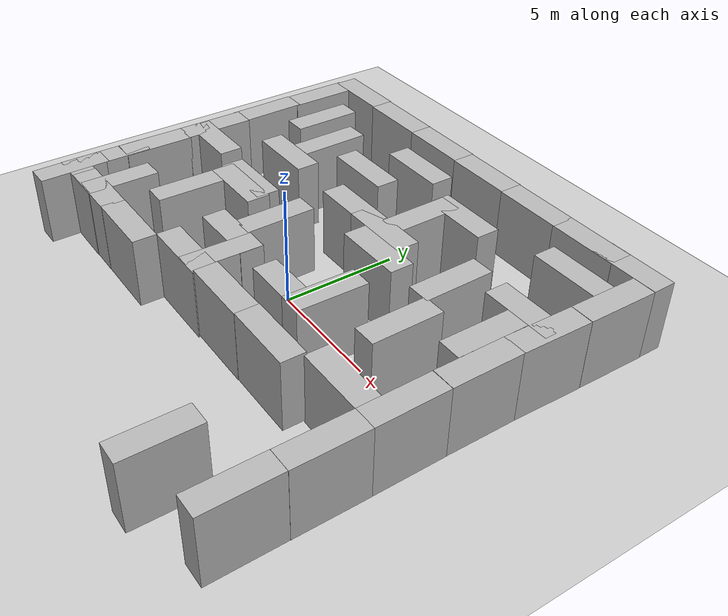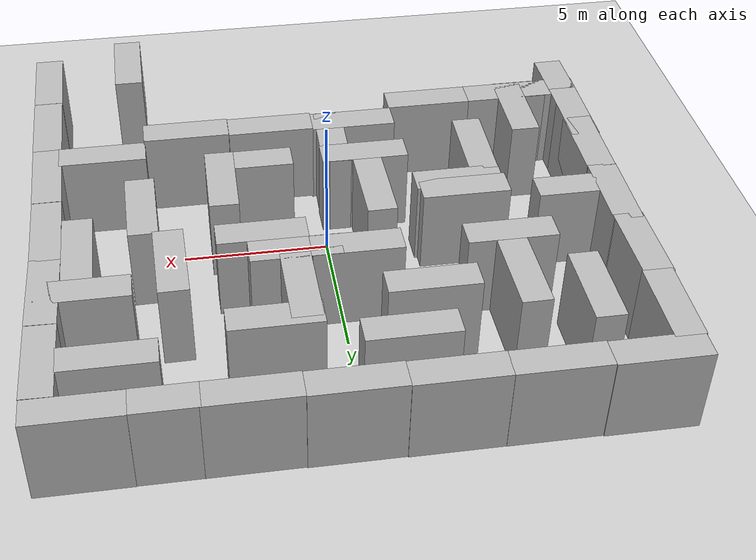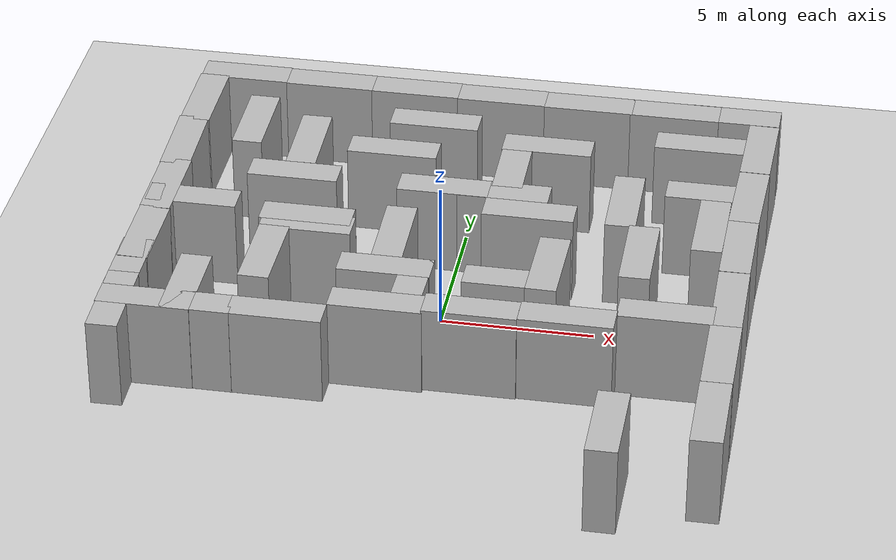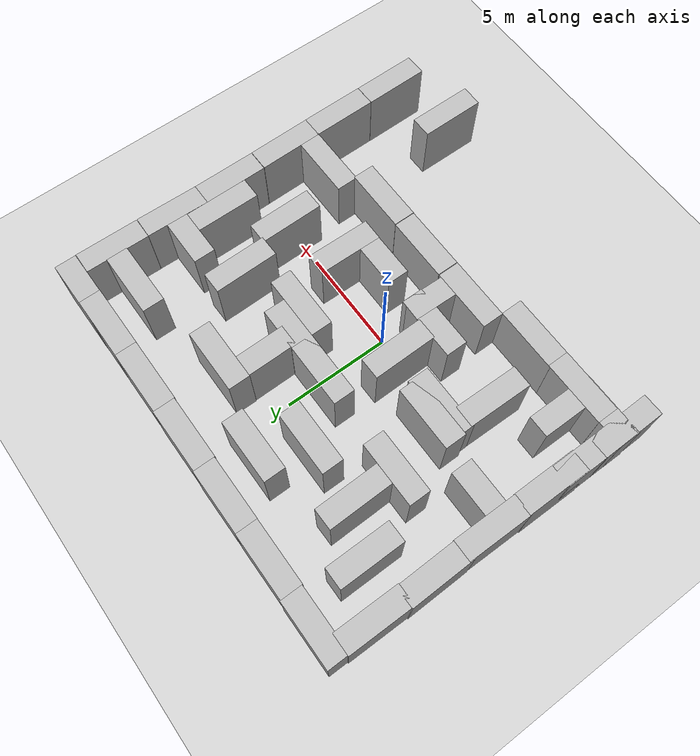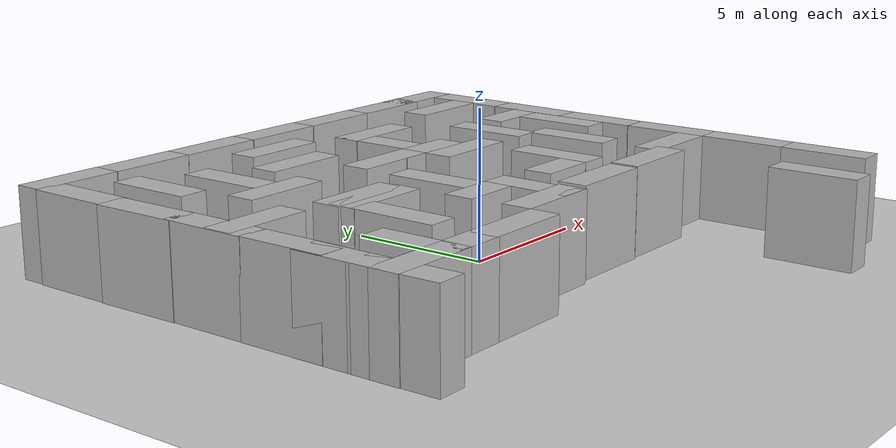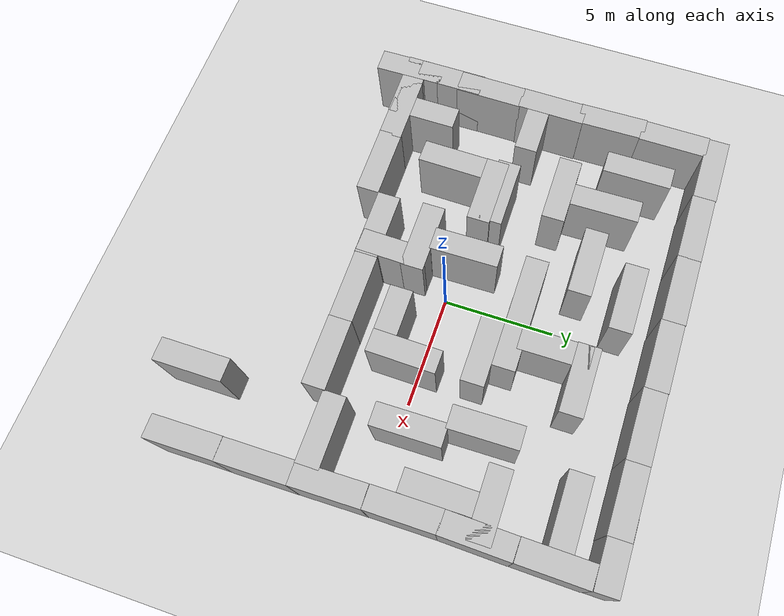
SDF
<sdf version="1.7">
 <world name="default">
  <light name="sun" type="directional">
   <pose>0 0 10 0 -0 0</pose>
   <diffuse>0.8 0.8 0.8 1</diffuse>
   <specular>0.2 0.2 0.2 1</specular>
   <attenuation>
    <range>1000</range>
    <constant>0.9</constant>
    <linear>0.01</linear>
    <quadratic>0.001</quadratic>
   </attenuation>
   <direction>-0.5 0.1 -0.9</direction>
   <spot><inner_angle>0</inner_angle><outer_angle>0</outer_angle><falloff>0</falloff></spot>
  </light>
  <model name="ground_plane">
   <static>1</static>
   <link name="link">
    <collision name="collision">
     <geometry><plane><normal>0 0 1</normal><size>100 100</size></plane></geometry>
     <surface><friction><ode><mu>100</mu><mu2>50</mu2></ode></friction></surface>
    </collision>
    <visual name="visual">
     <cast_shadows>0</cast_shadows>
     <geometry><plane><normal>0 0 1</normal><size>100 100</size></plane></geometry>
     <material>
      <script><uri>file://media/materials/scripts/gazebo.material</uri><name>Gazebo/Grey</name></script>
     </material>
    </visual>
   </link>
  </model>
  <gravity>0 0 -9.8</gravity>
  <magnetic_field>6e-06 2.3e-05 -4.2e-05</magnetic_field>
  <atmosphere type="adiabatic"/>
  <physics type="ode">
   <max_step_size>0.001</max_step_size>
   <real_time_factor>1</real_time_factor>
   <real_time_update_rate>1000</real_time_update_rate>
  </physics>
  <scene><ambient>0.4 0.4 0.4 1</ambient><background>0.7 0.7 0.7 1</background><shadows>1</shadows></scene>
  <spherical_coordinates>
   <surface_model>EARTH_WGS84</surface_model>
   <latitude_deg>0</latitude_deg>
   <longitude_deg>0</longitude_deg>
   <elevation>0</elevation>
   <heading_deg>0</heading_deg>
  </spherical_coordinates>
  <model name="brick_box_3x1x3">
   <static>1</static>
   <link name="chassis">
    <pose>0 0 1.5 0 -0 0</pose>
    <collision name="collision"><geometry><box><size>3 1 3</size></box></geometry></collision>
    <visual name="visual">
     <geometry><mesh><uri>model://brick_box_3x1x3/meshes/simple_box.dae</uri><scale>3 1 3</scale></mesh></geometry>
     <material>
      <script>
       <uri>model://brick_box_3x1x3/materials/scripts</uri>
       <uri>model://brick_box_3x1x3/materials/textures</uri>
       <name>BrickBox/Diffuse</name>
      </script>
     </material>
    </visual>
   </link>
   <pose>-8.46523 9.55339 0 0 -0 0</pose>
  </model>
  <model name="brick_box_3x1x3_0">
   <static>1</static>
   <link name="chassis">
    <pose>0 0 1.5 0 -0 0</pose>
    <collision name="collision"><geometry><box><size>3 1 3</size></box></geometry></collision>
    <visual name="visual">
     <geometry><mesh><uri>model://brick_box_3x1x3/meshes/simple_box.dae</uri><scale>3 1 3</scale></mesh></geometry>
     <material>
      <script>
       <uri>model://brick_box_3x1x3/materials/scripts</uri>
       <uri>model://brick_box_3x1x3/materials/textures</uri>
       <name>BrickBox/Diffuse</name>
      </script>
     </material>
    </visual>
   </link>
   <pose>-5.472 9.52057 0 0 -0 0</pose>
  </model>
  <model name="brick_box_3x1x3_1">
   <static>1</static>
   <link name="chassis">
    <pose>0 0 1.5 0 -0 0</pose>
    <collision name="collision"><geometry><box><size>3 1 3</size></box></geometry></collision>
    <visual name="visual">
     <geometry><mesh><uri>model://brick_box_3x1x3/meshes/simple_box.dae</uri><scale>3 1 3</scale></mesh></geometry>
     <material>
      <script>
       <uri>model://brick_box_3x1x3/materials/scripts</uri>
       <uri>model://brick_box_3x1x3/materials/textures</uri>
       <name>BrickBox/Diffuse</name>
      </script>
     </material>
    </visual>
   </link>
   <pose>-2.48829 9.51088 0 0 -0 0</pose>
  </model>
  <model name="brick_box_3x1x3_2">
   <static>1</static>
   <link name="chassis">
    <pose>0 0 1.5 0 -0 0</pose>
    <collision name="collision"><geometry><box><size>3 1 3</size></box></geometry></collision>
    <visual name="visual">
     <geometry><mesh><uri>model://brick_box_3x1x3/meshes/simple_box.dae</uri><scale>3 1 3</scale></mesh></geometry>
     <material>
      <script>
       <uri>model://brick_box_3x1x3/materials/scripts</uri>
       <uri>model://brick_box_3x1x3/materials/textures</uri>
       <name>BrickBox/Diffuse</name>
      </script>
     </material>
    </visual>
   </link>
   <pose>0.507665 9.48432 0 0 -0 0</pose>
  </model>
  <model name="brick_box_3x1x3_3">
   <static>1</static>
   <link name="chassis">
    <pose>0 0 1.5 0 -0 0</pose>
    <collision name="collision"><geometry><box><size>3 1 3</size></box></geometry></collision>
    <visual name="visual">
     <geometry><mesh><uri>model://brick_box_3x1x3/meshes/simple_box.dae</uri><scale>3 1 3</scale></mesh></geometry>
     <material>
      <script>
       <uri>model://brick_box_3x1x3/materials/scripts</uri>
       <uri>model://brick_box_3x1x3/materials/textures</uri>
       <name>BrickBox/Diffuse</name>
      </script>
     </material>
    </visual>
   </link>
   <pose>3.50209 9.45934 0 0 -0 0</pose>
  </model>
  <model name="brick_box_3x1x3_4">
   <static>1</static>
   <link name="chassis">
    <pose>0 0 1.5 0 -0 0</pose>
    <collision name="collision"><geometry><box><size>3 1 3</size></box></geometry></collision>
    <visual name="visual">
     <geometry><mesh><uri>model://brick_box_3x1x3/meshes/simple_box.dae</uri><scale>3 1 3</scale></mesh></geometry>
     <material>
      <script>
       <uri>model://brick_box_3x1x3/materials/scripts</uri>
       <uri>model://brick_box_3x1x3/materials/textures</uri>
       <name>BrickBox/Diffuse</name>
      </script>
     </material>
    </visual>
   </link>
   <pose>6.44256 9.45577 0 0 -0 0</pose>
  </model>
  <model name="brick_box_3x1x3_5">
   <static>1</static>
   <link name="chassis">
    <pose>0 0 1.5 0 -0 0</pose>
    <collision name="collision"><geometry><box><size>3 1 3</size></box></geometry></collision>
    <visual name="visual">
     <geometry><mesh><uri>model://brick_box_3x1x3/meshes/simple_box.dae</uri><scale>3 1 3</scale></mesh></geometry>
     <material>
      <script>
       <uri>model://brick_box_3x1x3/materials/scripts</uri>
       <uri>model://brick_box_3x1x3/materials/textures</uri>
       <name>BrickBox/Diffuse</name>
      </script>
     </material>
    </visual>
   </link>
   <pose>8.48988 9.46786 0 0 -0 0</pose>
  </model>
  <model name="brick_box_3x1x3_6">
   <static>1</static>
   <link name="chassis">
    <pose>0 0 1.5 0 -0 0</pose>
    <collision name="collision"><geometry><box><size>3 1 3</size></box></geometry></collision>
    <visual name="visual">
     <geometry><mesh><uri>model://brick_box_3x1x3/meshes/simple_box.dae</uri><scale>3 1 3</scale></mesh></geometry>
     <material>
      <script>
       <uri>model://brick_box_3x1x3/materials/scripts</uri>
       <uri>model://brick_box_3x1x3/materials/textures</uri>
       <name>BrickBox/Diffuse</name>
      </script>
     </material>
    </visual>
   </link>
   <pose>-7.28014 -4.47821 0 0 -0 0</pose>
  </model>
  <model name="brick_box_3x1x3_7">
   <static>1</static>
   <link name="chassis">
    <pose>0 0 1.5 0 -0 0</pose>
    <collision name="collision"><geometry><box><size>3 1 3</size></box></geometry></collision>
    <visual name="visual">
     <geometry><mesh><uri>model://brick_box_3x1x3/meshes/simple_box.dae</uri><scale>3 1 3</scale></mesh></geometry>
     <material>
      <script>
       <uri>model://brick_box_3x1x3/materials/scripts</uri>
       <uri>model://brick_box_3x1x3/materials/textures</uri>
       <name>BrickBox/Diffuse</name>
      </script>
     </material>
    </visual>
   </link>
   <pose>-4.45589 0.533248 0 0 -0 0</pose>
  </model>
  <model name="brick_box_3x1x3_8">
   <static>1</static>
   <link name="chassis">
    <pose>0 0 1.5 0 -0 0</pose>
    <collision name="collision"><geometry><box><size>3 1 3</size></box></geometry></collision>
    <visual name="visual">
     <geometry><mesh><uri>model://brick_box_3x1x3/meshes/simple_box.dae</uri><scale>3 1 3</scale></mesh></geometry>
     <material>
      <script>
       <uri>model://brick_box_3x1x3/materials/scripts</uri>
       <uri>model://brick_box_3x1x3/materials/textures</uri>
       <name>BrickBox/Diffuse</name>
      </script>
     </material>
    </visual>
   </link>
   <pose>-8.53665 -4.49715 0 0 -0 0</pose>
  </model>
  <model name="brick_box_3x1x3_9">
   <static>1</static>
   <link name="chassis">
    <pose>0 0 1.5 0 -0 0</pose>
    <collision name="collision"><geometry><box><size>3 1 3</size></box></geometry></collision>
    <visual name="visual">
     <geometry><mesh><uri>model://brick_box_3x1x3/meshes/simple_box.dae</uri><scale>3 1 3</scale></mesh></geometry>
     <material>
      <script>
       <uri>model://brick_box_3x1x3/materials/scripts</uri>
       <uri>model://brick_box_3x1x3/materials/textures</uri>
       <name>BrickBox/Diffuse</name>
      </script>
     </material>
    </visual>
   </link>
   <pose>-8.44293 1.49368 0 0 -0 0</pose>
  </model>
  <model name="brick_box_3x1x3_10">
   <static>1</static>
   <link name="chassis">
    <pose>0 0 1.5 0 -0 0</pose>
    <collision name="collision"><geometry><box><size>3 1 3</size></box></geometry></collision>
    <visual name="visual">
     <geometry><mesh><uri>model://brick_box_3x1x3/meshes/simple_box.dae</uri><scale>3 1 3</scale></mesh></geometry>
     <material>
      <script>
       <uri>model://brick_box_3x1x3/materials/scripts</uri>
       <uri>model://brick_box_3x1x3/materials/textures</uri>
       <name>BrickBox/Diffuse</name>
      </script>
     </material>
    </visual>
   </link>
   <pose>4.5764 -3.43191 0.120842 0 -0 0</pose>
  </model>
  <model name="brick_box_3x1x3_11">
   <static>1</static>
   <link name="chassis">
    <pose>0 0 1.5 0 -0 0</pose>
    <collision name="collision"><geometry><box><size>3 1 3</size></box></geometry></collision>
    <visual name="visual">
     <geometry><mesh><uri>model://brick_box_3x1x3/meshes/simple_box.dae</uri><scale>3 1 3</scale></mesh></geometry>
     <material>
      <script>
       <uri>model://brick_box_3x1x3/materials/scripts</uri>
       <uri>model://brick_box_3x1x3/materials/textures</uri>
       <name>BrickBox/Diffuse</name>
      </script>
     </material>
    </visual>
   </link>
   <pose>1.56808 -3.43253 0.085358 0 -0 0</pose>
  </model>
  <model name="brick_box_3x1x3_12">
   <static>1</static>
   <link name="chassis">
    <pose>0 0 1.5 0 -0 0</pose>
    <collision name="collision"><geometry><box><size>3 1 3</size></box></geometry></collision>
    <visual name="visual">
     <geometry><mesh><uri>model://brick_box_3x1x3/meshes/simple_box.dae</uri><scale>3 1 3</scale></mesh></geometry>
     <material>
      <script>
       <uri>model://brick_box_3x1x3/materials/scripts</uri>
       <uri>model://brick_box_3x1x3/materials/textures</uri>
       <name>BrickBox/Diffuse</name>
      </script>
     </material>
    </visual>
   </link>
   <pose>-4.56061 1.04068 0 0 -0 0</pose>
  </model>
  <model name="brick_box_3x1x3_13">
   <static>1</static>
   <link name="chassis">
    <pose>0 0 1.5 0 -0 0</pose>
    <collision name="collision"><geometry><box><size>3 1 3</size></box></geometry></collision>
    <visual name="visual">
     <geometry><mesh><uri>model://brick_box_3x1x3/meshes/simple_box.dae</uri><scale>3 1 3</scale></mesh></geometry>
     <material>
      <script>
       <uri>model://brick_box_3x1x3/materials/scripts</uri>
       <uri>model://brick_box_3x1x3/materials/textures</uri>
       <name>BrickBox/Diffuse</name>
      </script>
     </material>
    </visual>
   </link>
   <pose>7.54132 -2.54006 0 0 -0 0</pose>
  </model>
  <model name="brick_box_3x1x3_14">
   <static>1</static>
   <link name="chassis">
    <pose>0 0 1.5 0 -0 0</pose>
    <collision name="collision"><geometry><box><size>3 1 3</size></box></geometry></collision>
    <visual name="visual">
     <geometry><mesh><uri>model://brick_box_3x1x3/meshes/simple_box.dae</uri><scale>3 1 3</scale></mesh></geometry>
     <material>
      <script>
       <uri>model://brick_box_3x1x3/materials/scripts</uri>
       <uri>model://brick_box_3x1x3/materials/textures</uri>
       <name>BrickBox/Diffuse</name>
      </script>
     </material>
    </visual>
   </link>
   <pose>-1.40047 -3.47139 0 0 -0 0</pose>
  </model>
  <model name="brick_box_3x1x3_15">
   <static>1</static>
   <link name="chassis">
    <pose>0 0 1.5 0 -0 0</pose>
    <collision name="collision"><geometry><box><size>3 1 3</size></box></geometry></collision>
    <visual name="visual">
     <geometry><mesh><uri>model://brick_box_3x1x3/meshes/simple_box.dae</uri><scale>3 1 3</scale></mesh></geometry>
     <material>
      <script>
       <uri>model://brick_box_3x1x3/materials/scripts</uri>
       <uri>model://brick_box_3x1x3/materials/textures</uri>
       <name>BrickBox/Diffuse</name>
      </script>
     </material>
    </visual>
   </link>
   <pose>-5.50946 3.56604 0 0 -0 0</pose>
  </model>
  <model name="brick_box_3x1x3_16">
   <static>1</static>
   <link name="chassis">
    <pose>0 0 1.5 0 -0 0</pose>
    <collision name="collision"><geometry><box><size>3 1 3</size></box></geometry></collision>
    <visual name="visual">
     <geometry><mesh><uri>model://brick_box_3x1x3/meshes/simple_box.dae</uri><scale>3 1 3</scale></mesh></geometry>
     <material>
      <script>
       <uri>model://brick_box_3x1x3/materials/scripts</uri>
       <uri>model://brick_box_3x1x3/materials/textures</uri>
       <name>BrickBox/Diffuse</name>
      </script>
     </material>
    </visual>
   </link>
   <pose>-2.53896 5.53088 0 0 -0 0</pose>
  </model>
  <model name="brick_box_3x1x3_17">
   <static>1</static>
   <link name="chassis">
    <pose>0 0 1.5 0 -0 0</pose>
    <collision name="collision"><geometry><box><size>3 1 3</size></box></geometry></collision>
    <visual name="visual">
     <geometry><mesh><uri>model://brick_box_3x1x3/meshes/simple_box.dae</uri><scale>3 1 3</scale></mesh></geometry>
     <material>
      <script>
       <uri>model://brick_box_3x1x3/materials/scripts</uri>
       <uri>model://brick_box_3x1x3/materials/textures</uri>
       <name>BrickBox/Diffuse</name>
      </script>
     </material>
    </visual>
   </link>
   <pose>-1.57972 0.462757 -0 0 -0 1.58335</pose>
  </model>
  <model name="brick_box_3x1x3_18">
   <static>1</static>
   <link name="chassis">
    <pose>0 0 1.5 0 -0 0</pose>
    <collision name="collision"><geometry><box><size>3 1 3</size></box></geometry></collision>
    <visual name="visual">
     <geometry><mesh><uri>model://brick_box_3x1x3/meshes/simple_box.dae</uri><scale>3 1 3</scale></mesh></geometry>
     <material>
      <script>
       <uri>model://brick_box_3x1x3/materials/scripts</uri>
       <uri>model://brick_box_3x1x3/materials/textures</uri>
       <name>BrickBox/Diffuse</name>
      </script>
     </material>
    </visual>
   </link>
   <pose>5.4779 3.52288 0 0 -0 1.58625</pose>
  </model>
  <model name="brick_box_3x1x3_19">
   <static>1</static>
   <link name="chassis">
    <pose>0 0 1.5 0 -0 0</pose>
    <collision name="collision"><geometry><box><size>3 1 3</size></box></geometry></collision>
    <visual name="visual">
     <geometry><mesh><uri>model://brick_box_3x1x3/meshes/simple_box.dae</uri><scale>3 1 3</scale></mesh></geometry>
     <material>
      <script>
       <uri>model://brick_box_3x1x3/materials/scripts</uri>
       <uri>model://brick_box_3x1x3/materials/textures</uri>
       <name>BrickBox/Diffuse</name>
      </script>
     </material>
    </visual>
   </link>
   <pose>9.47279 -7.51807 -9e-06 9e-06 0.000951 -1.56124</pose>
  </model>
  <model name="brick_box_3x1x3_20">
   <static>1</static>
   <link name="chassis">
    <pose>0 0 1.5 0 -0 0</pose>
    <collision name="collision"><geometry><box><size>3 1 3</size></box></geometry></collision>
    <visual name="visual">
     <geometry><mesh><uri>model://brick_box_3x1x3/meshes/simple_box.dae</uri><scale>3 1 3</scale></mesh></geometry>
     <material>
      <script>
       <uri>model://brick_box_3x1x3/materials/scripts</uri>
       <uri>model://brick_box_3x1x3/materials/textures</uri>
       <name>BrickBox/Diffuse</name>
      </script>
     </material>
    </visual>
   </link>
   <pose>9.45439 -4.51841 0 0 -0 1.57734</pose>
  </model>
  <model name="brick_box_3x1x3_21">
   <static>1</static>
   <link name="chassis">
    <pose>0 0 1.5 0 -0 0</pose>
    <collision name="collision"><geometry><box><size>3 1 3</size></box></geometry></collision>
    <visual name="visual">
     <geometry><mesh><uri>model://brick_box_3x1x3/meshes/simple_box.dae</uri><scale>3 1 3</scale></mesh></geometry>
     <material>
      <script>
       <uri>model://brick_box_3x1x3/materials/scripts</uri>
       <uri>model://brick_box_3x1x3/materials/textures</uri>
       <name>BrickBox/Diffuse</name>
      </script>
     </material>
    </visual>
   </link>
   <pose>9.42032 -1.5245 0 0 -0 1.58366</pose>
  </model>
  <model name="brick_box_3x1x3_22">
   <static>1</static>
   <link name="chassis">
    <pose>0 0 1.5 0 -0 0</pose>
    <collision name="collision"><geometry><box><size>3 1 3</size></box></geometry></collision>
    <visual name="visual">
     <geometry><mesh><uri>model://brick_box_3x1x3/meshes/simple_box.dae</uri><scale>3 1 3</scale></mesh></geometry>
     <material>
      <script>
       <uri>model://brick_box_3x1x3/materials/scripts</uri>
       <uri>model://brick_box_3x1x3/materials/textures</uri>
       <name>BrickBox/Diffuse</name>
      </script>
     </material>
    </visual>
   </link>
   <pose>9.39389 1.48599 0 0 -0 1.5723</pose>
  </model>
  <model name="brick_box_3x1x3_23">
   <static>1</static>
   <link name="chassis">
    <pose>0 0 1.5 0 -0 0</pose>
    <collision name="collision"><geometry><box><size>3 1 3</size></box></geometry></collision>
    <visual name="visual">
     <geometry><mesh><uri>model://brick_box_3x1x3/meshes/simple_box.dae</uri><scale>3 1 3</scale></mesh></geometry>
     <material>
      <script>
       <uri>model://brick_box_3x1x3/materials/scripts</uri>
       <uri>model://brick_box_3x1x3/materials/textures</uri>
       <name>BrickBox/Diffuse</name>
      </script>
     </material>
    </visual>
   </link>
   <pose>9.42756 4.44847 0 0 -0 1.54705</pose>
  </model>
  <model name="brick_box_3x1x3_24">
   <static>1</static>
   <link name="chassis">
    <pose>0 0 1.5 0 -0 0</pose>
    <collision name="collision"><geometry><box><size>3 1 3</size></box></geometry></collision>
    <visual name="visual">
     <geometry><mesh><uri>model://brick_box_3x1x3/meshes/simple_box.dae</uri><scale>3 1 3</scale></mesh></geometry>
     <material>
      <script>
       <uri>model://brick_box_3x1x3/materials/scripts</uri>
       <uri>model://brick_box_3x1x3/materials/textures</uri>
       <name>BrickBox/Diffuse</name>
      </script>
     </material>
    </visual>
   </link>
   <pose>9.47912 7.45795 0 0 -0 1.55575</pose>
  </model>
  <model name="brick_box_3x1x3_25">
   <static>1</static>
   <link name="chassis">
    <pose>0 0 1.5 0 -0 0</pose>
    <collision name="collision"><geometry><box><size>3 1 3</size></box></geometry></collision>
    <visual name="visual">
     <geometry><mesh><uri>model://brick_box_3x1x3/meshes/simple_box.dae</uri><scale>3 1 3</scale></mesh></geometry>
     <material>
      <script>
       <uri>model://brick_box_3x1x3/materials/scripts</uri>
       <uri>model://brick_box_3x1x3/materials/textures</uri>
       <name>BrickBox/Diffuse</name>
      </script>
     </material>
    </visual>
   </link>
   <pose>-7.50483 -3.43801 0 0 -0 1.56732</pose>
  </model>
  <model name="brick_box_3x1x3_26">
   <static>1</static>
   <link name="chassis">
    <pose>0 0 1.5 0 -0 0</pose>
    <collision name="collision"><geometry><box><size>3 1 3</size></box></geometry></collision>
    <visual name="visual">
     <geometry><mesh><uri>model://brick_box_3x1x3/meshes/simple_box.dae</uri><scale>3 1 3</scale></mesh></geometry>
     <material>
      <script>
       <uri>model://brick_box_3x1x3/materials/scripts</uri>
       <uri>model://brick_box_3x1x3/materials/textures</uri>
       <name>BrickBox/Diffuse</name>
      </script>
     </material>
    </visual>
   </link>
   <pose>-9.51453 -4.75402 0 0 -0 1.585</pose>
  </model>
  <model name="brick_box_3x1x3_27">
   <static>1</static>
   <link name="chassis">
    <pose>0 0 1.5 0 -0 0</pose>
    <collision name="collision"><geometry><box><size>3 1 3</size></box></geometry></collision>
    <visual name="visual">
     <geometry><mesh><uri>model://brick_box_3x1x3/meshes/simple_box.dae</uri><scale>3 1 3</scale></mesh></geometry>
     <material>
      <script>
       <uri>model://brick_box_3x1x3/materials/scripts</uri>
       <uri>model://brick_box_3x1x3/materials/textures</uri>
       <name>BrickBox/Diffuse</name>
      </script>
     </material>
    </visual>
   </link>
   <pose>-9.54809 -0.899517 0.002837 0.016451 0.002304 1.56624</pose>
  </model>
  <model name="brick_box_3x1x3_28">
   <static>1</static>
   <link name="chassis">
    <pose>0 0 1.5 0 -0 0</pose>
    <collision name="collision"><geometry><box><size>3 1 3</size></box></geometry></collision>
    <visual name="visual">
     <geometry><mesh><uri>model://brick_box_3x1x3/meshes/simple_box.dae</uri><scale>3 1 3</scale></mesh></geometry>
     <material>
      <script>
       <uri>model://brick_box_3x1x3/materials/scripts</uri>
       <uri>model://brick_box_3x1x3/materials/textures</uri>
       <name>BrickBox/Diffuse</name>
      </script>
     </material>
    </visual>
   </link>
   <pose>-9.49995 2.05036 0 0 -0 1.56412</pose>
  </model>
  <model name="brick_box_3x1x3_29">
   <static>1</static>
   <link name="chassis">
    <pose>0 0 1.5 0 -0 0</pose>
    <collision name="collision"><geometry><box><size>3 1 3</size></box></geometry></collision>
    <visual name="visual">
     <geometry><mesh><uri>model://brick_box_3x1x3/meshes/simple_box.dae</uri><scale>3 1 3</scale></mesh></geometry>
     <material>
      <script>
       <uri>model://brick_box_3x1x3/materials/scripts</uri>
       <uri>model://brick_box_3x1x3/materials/textures</uri>
       <name>BrickBox/Diffuse</name>
      </script>
     </material>
    </visual>
   </link>
   <pose>-9.53782 4.81396 0 0 -0 1.58649</pose>
  </model>
  <model name="brick_box_3x1x3_30">
   <static>1</static>
   <link name="chassis">
    <pose>0 0 1.5 0 -0 0</pose>
    <collision name="collision"><geometry><box><size>3 1 3</size></box></geometry></collision>
    <visual name="visual">
     <geometry><mesh><uri>model://brick_box_3x1x3/meshes/simple_box.dae</uri><scale>3 1 3</scale></mesh></geometry>
     <material>
      <script>
       <uri>model://brick_box_3x1x3/materials/scripts</uri>
       <uri>model://brick_box_3x1x3/materials/textures</uri>
       <name>BrickBox/Diffuse</name>
      </script>
     </material>
    </visual>
   </link>
   <pose>-9.51638 7.65972 0 0 -0 1.56571</pose>
  </model>
  <model name="brick_box_3x1x3_31">
   <static>1</static>
   <link name="chassis">
    <pose>0 0 1.5 0 -0 0</pose>
    <collision name="collision"><geometry><box><size>3 1 3</size></box></geometry></collision>
    <visual name="visual">
     <geometry><mesh><uri>model://brick_box_3x1x3/meshes/simple_box.dae</uri><scale>3 1 3</scale></mesh></geometry>
     <material>
      <script>
       <uri>model://brick_box_3x1x3/materials/scripts</uri>
       <uri>model://brick_box_3x1x3/materials/textures</uri>
       <name>BrickBox/Diffuse</name>
      </script>
     </material>
    </visual>
   </link>
   <pose>-9.53488 -2.84491 0 0 -0 1.57198</pose>
  </model>
  <model name="brick_box_3x1x3_32">
   <static>1</static>
   <link name="chassis">
    <pose>0 0 1.5 0 -0 0</pose>
    <collision name="collision"><geometry><box><size>3 1 3</size></box></geometry></collision>
    <visual name="visual">
     <geometry><mesh><uri>model://brick_box_3x1x3/meshes/simple_box.dae</uri><scale>3 1 3</scale></mesh></geometry>
     <material>
      <script>
       <uri>model://brick_box_3x1x3/materials/scripts</uri>
       <uri>model://brick_box_3x1x3/materials/textures</uri>
       <name>BrickBox/Diffuse</name>
      </script>
     </material>
    </visual>
   </link>
   <pose>2.51166 -1.51956 0 0 -0 0</pose>
  </model>
  <model name="brick_box_3x1x3_33">
   <static>1</static>
   <link name="chassis">
    <pose>0 0 1.5 0 -0 0</pose>
    <collision name="collision"><geometry><box><size>3 1 3</size></box></geometry></collision>
    <visual name="visual">
     <geometry><mesh><uri>model://brick_box_3x1x3/meshes/simple_box.dae</uri><scale>3 1 3</scale></mesh></geometry>
     <material>
      <script>
       <uri>model://brick_box_3x1x3/materials/scripts</uri>
       <uri>model://brick_box_3x1x3/materials/textures</uri>
       <name>BrickBox/Diffuse</name>
      </script>
     </material>
    </visual>
   </link>
   <pose>-5.46567 -1.33737 0 0 -0 1.55582</pose>
  </model>
  <model name="brick_box_3x1x3_34">
   <static>1</static>
   <link name="chassis">
    <pose>0 0 1.5 0 -0 0</pose>
    <collision name="collision"><geometry><box><size>3 1 3</size></box></geometry></collision>
    <visual name="visual">
     <geometry><mesh><uri>model://brick_box_3x1x3/meshes/simple_box.dae</uri><scale>3 1 3</scale></mesh></geometry>
     <material>
      <script>
       <uri>model://brick_box_3x1x3/materials/scripts</uri>
       <uri>model://brick_box_3x1x3/materials/textures</uri>
       <name>BrickBox/Diffuse</name>
      </script>
     </material>
    </visual>
   </link>
   <pose>-4.37292 -4.47208 0 0 -0 0</pose>
  </model>
  <model name="brick_box_3x1x3_35">
   <static>1</static>
   <link name="chassis">
    <pose>0 0 1.5 0 -0 0</pose>
    <collision name="collision"><geometry><box><size>3 1 3</size></box></geometry></collision>
    <visual name="visual">
     <geometry><mesh><uri>model://brick_box_3x1x3/meshes/simple_box.dae</uri><scale>3 1 3</scale></mesh></geometry>
     <material>
      <script>
       <uri>model://brick_box_3x1x3/materials/scripts</uri>
       <uri>model://brick_box_3x1x3/materials/textures</uri>
       <name>BrickBox/Diffuse</name>
      </script>
     </material>
    </visual>
   </link>
   <pose>1.5103 3.47128 0 0 -0 0</pose>
  </model>
  <model name="brick_box_3x1x3_36">
   <static>1</static>
   <link name="chassis">
    <pose>0 0 1.5 0 -0 0</pose>
    <collision name="collision"><geometry><box><size>3 1 3</size></box></geometry></collision>
    <visual name="visual">
     <geometry><mesh><uri>model://brick_box_3x1x3/meshes/simple_box.dae</uri><scale>3 1 3</scale></mesh></geometry>
     <material>
      <script>
       <uri>model://brick_box_3x1x3/materials/scripts</uri>
       <uri>model://brick_box_3x1x3/materials/textures</uri>
       <name>BrickBox/Diffuse</name>
      </script>
     </material>
    </visual>
   </link>
   <pose>6.30495 0.623672 0 0 -0 1.58157</pose>
  </model>
  <model name="brick_box_3x1x3_37">
   <static>1</static>
   <link name="chassis">
    <pose>0 0 1.5 0 -0 0</pose>
    <collision name="collision"><geometry><box><size>3 1 3</size></box></geometry></collision>
    <visual name="visual">
     <geometry><mesh><uri>model://brick_box_3x1x3/meshes/simple_box.dae</uri><scale>3 1 3</scale></mesh></geometry>
     <material>
      <script>
       <uri>model://brick_box_3x1x3/materials/scripts</uri>
       <uri>model://brick_box_3x1x3/materials/textures</uri>
       <name>BrickBox/Diffuse</name>
      </script>
     </material>
    </visual>
   </link>
   <pose>2.50555 6.52768 0 0 -0 0</pose>
  </model>
  <model name="brick_box_3x1x3_38">
   <static>1</static>
   <link name="chassis">
    <pose>0 0 1.5 0 -0 0</pose>
    <collision name="collision"><geometry><box><size>3 1 3</size></box></geometry></collision>
    <visual name="visual">
     <geometry><mesh><uri>model://brick_box_3x1x3/meshes/simple_box.dae</uri><scale>3 1 3</scale></mesh></geometry>
     <material>
      <script>
       <uri>model://brick_box_3x1x3/materials/scripts</uri>
       <uri>model://brick_box_3x1x3/materials/textures</uri>
       <name>BrickBox/Diffuse</name>
      </script>
     </material>
    </visual>
   </link>
   <pose>-7.47008 6.53107 0 0 -0 1.57207</pose>
  </model>
  <model name="brick_box_3x1x3_39">
   <static>1</static>
   <link name="chassis">
    <pose>0 0 1.5 0 -0 0</pose>
    <collision name="collision"><geometry><box><size>3 1 3</size></box></geometry></collision>
    <visual name="visual">
     <geometry><mesh><uri>model://brick_box_3x1x3/meshes/simple_box.dae</uri><scale>3 1 3</scale></mesh></geometry>
     <material>
      <script>
       <uri>model://brick_box_3x1x3/materials/scripts</uri>
       <uri>model://brick_box_3x1x3/materials/textures</uri>
       <name>BrickBox/Diffuse</name>
      </script>
     </material>
    </visual>
   </link>
   <pose>-0.542235 -2.45583 0 0 -0 1.55049</pose>
  </model>
  <model name="brick_box_3x1x3_40">
   <static>1</static>
   <link name="chassis">
    <pose>0 0 1.5 0 -0 0</pose>
    <collision name="collision"><geometry><box><size>3 1 3</size></box></geometry></collision>
    <visual name="visual">
     <geometry><mesh><uri>model://brick_box_3x1x3/meshes/simple_box.dae</uri><scale>3 1 3</scale></mesh></geometry>
     <material>
      <script>
       <uri>model://brick_box_3x1x3/materials/scripts</uri>
       <uri>model://brick_box_3x1x3/materials/textures</uri>
       <name>BrickBox/Diffuse</name>
      </script>
     </material>
    </visual>
   </link>
   <pose>6.5134 -8.51702 0 0 -0 1.57244</pose>
  </model>
  <model name="brick_box_3x1x3_41">
   <static>1</static>
   <link name="chassis">
    <pose>0 0 1.5 0 -0 0</pose>
    <collision name="collision"><geometry><box><size>3 1 3</size></box></geometry></collision>
    <visual name="visual">
     <geometry><mesh><uri>model://brick_box_3x1x3/meshes/simple_box.dae</uri><scale>3 1 3</scale></mesh></geometry>
     <material>
      <script>
       <uri>model://brick_box_3x1x3/materials/scripts</uri>
       <uri>model://brick_box_3x1x3/materials/textures</uri>
       <name>BrickBox/Diffuse</name>
      </script>
     </material>
    </visual>
   </link>
   <pose>7.50939 7.50874 0 0 -0 0</pose>
  </model>
  <model name="brick_box_3x1x3_42">
   <static>1</static>
   <link name="chassis">
    <pose>0 0 1.5 0 -0 0</pose>
    <collision name="collision"><geometry><box><size>3 1 3</size></box></geometry></collision>
    <visual name="visual">
     <geometry><mesh><uri>model://brick_box_3x1x3/meshes/simple_box.dae</uri><scale>3 1 3</scale></mesh></geometry>
     <material>
      <script>
       <uri>model://brick_box_3x1x3/materials/scripts</uri>
       <uri>model://brick_box_3x1x3/materials/textures</uri>
       <name>BrickBox/Diffuse</name>
      </script>
     </material>
    </visual>
   </link>
   <pose>3.54631 -0.542431 0 3.7e-05 -0.002339 -1.58655</pose>
  </model>
  <model name="brick_box_3x1x3_43">
   <static>1</static>
   <link name="chassis">
    <pose>0 0 1.5 0 -0 0</pose>
    <collision name="collision"><geometry><box><size>3 1 3</size></box></geometry></collision>
    <visual name="visual">
     <geometry><mesh><uri>model://brick_box_3x1x3/meshes/simple_box.dae</uri><scale>3 1 3</scale></mesh></geometry>
     <material>
      <script>
       <uri>model://brick_box_3x1x3/materials/scripts</uri>
       <uri>model://brick_box_3x1x3/materials/textures</uri>
       <name>BrickBox/Diffuse</name>
      </script>
     </material>
    </visual>
   </link>
   <pose>1.54122 5.22879 0 0 -0 1.5782</pose>
  </model>
  <model name="brick_box_3x1x3_44">
   <static>1</static>
   <link name="chassis">
    <pose>0 0 1.5 0 -0 0</pose>
    <collision name="collision"><geometry><box><size>3 1 3</size></box></geometry></collision>
    <visual name="visual">
     <geometry><mesh><uri>model://brick_box_3x1x3/meshes/simple_box.dae</uri><scale>3 1 3</scale></mesh></geometry>
     <material>
      <script>
       <uri>model://brick_box_3x1x3/materials/scripts</uri>
       <uri>model://brick_box_3x1x3/materials/textures</uri>
       <name>BrickBox/Diffuse</name>
      </script>
     </material>
    </visual>
   </link>
   <pose>-1.47415 7.52898 0 0 -0 0</pose>
  </model>
  <model name="brick_box_3x1x3_45">
   <static>1</static>
   <link name="chassis">
    <pose>0 0 1.5 0 -0 0</pose>
    <collision name="collision"><geometry><box><size>3 1 3</size></box></geometry></collision>
    <visual name="visual">
     <geometry><mesh><uri>model://brick_box_3x1x3/meshes/simple_box.dae</uri><scale>3 1 3</scale></mesh></geometry>
     <material>
      <script>
       <uri>model://brick_box_3x1x3/materials/scripts</uri>
       <uri>model://brick_box_3x1x3/materials/textures</uri>
       <name>BrickBox/Diffuse</name>
      </script>
     </material>
    </visual>
   </link>
   <pose>-5.44003 5.56479 0 0 -0 1.58448</pose>
  </model>
  <model name="brick_box_3x1x3_46">
   <static>1</static>
   <link name="chassis">
    <pose>0 0 1.5 0 -0 0</pose>
    <collision name="collision"><geometry><box><size>3 1 3</size></box></geometry></collision>
    <visual name="visual">
     <geometry><mesh><uri>model://brick_box_3x1x3/meshes/simple_box.dae</uri><scale>3 1 3</scale></mesh></geometry>
     <material>
      <script>
       <uri>model://brick_box_3x1x3/materials/scripts</uri>
       <uri>model://brick_box_3x1x3/materials/textures</uri>
       <name>BrickBox/Diffuse</name>
      </script>
     </material>
    </visual>
   </link>
   <pose>-0.484204 3.47946 0 0 -0 0</pose>
  </model>
  <model name="brick_box_3x1x3_47">
   <static>1</static>
   <link name="chassis">
    <pose>0 0 1.5 0 -0 0</pose>
    <collision name="collision"><geometry><box><size>3 1 3</size></box></geometry></collision>
    <visual name="visual">
     <geometry><mesh><uri>model://brick_box_3x1x3/meshes/simple_box.dae</uri><scale>3 1 3</scale></mesh></geometry>
     <material>
      <script>
       <uri>model://brick_box_3x1x3/materials/scripts</uri>
       <uri>model://brick_box_3x1x3/materials/textures</uri>
       <name>BrickBox/Diffuse</name>
      </script>
     </material>
    </visual>
   </link>
   <pose>8.21412 4.52822 0 0 -0 0</pose>
  </model>
  <model name="brick_box_3x1x3_48">
   <static>1</static>
   <link name="chassis">
    <pose>0 0 1.5 0 -0 0</pose>
    <collision name="collision"><geometry><box><size>3 1 3</size></box></geometry></collision>
    <visual name="visual">
     <geometry><mesh><uri>model://brick_box_3x1x3/meshes/simple_box.dae</uri><scale>3 1 3</scale></mesh></geometry>
     <material>
      <script>
       <uri>model://brick_box_3x1x3/materials/scripts</uri>
       <uri>model://brick_box_3x1x3/materials/textures</uri>
       <name>BrickBox/Diffuse</name>
      </script>
     </material>
    </visual>
   </link>
   <pose>8.39424 2.53161 0 0 -0 1.56793</pose>
  </model>
  <model name="brick_box_3x1x3_49">
   <static>1</static>
   <link name="chassis">
    <pose>0 0 1.5 0 -0 0</pose>
    <collision name="collision"><geometry><box><size>3 1 3</size></box></geometry></collision>
    <visual name="visual">
     <geometry><mesh><uri>model://brick_box_3x1x3/meshes/simple_box.dae</uri><scale>3 1 3</scale></mesh></geometry>
     <material>
      <script>
       <uri>model://brick_box_3x1x3/materials/scripts</uri>
       <uri>model://brick_box_3x1x3/materials/textures</uri>
       <name>BrickBox/Diffuse</name>
      </script>
     </material>
    </visual>
   </link>
   <pose>2.48947 2.47306 0 0 -0 0</pose>
  </model>
  <model name="brick_box_3x1x3_50">
   <static>1</static>
   <link name="chassis">
    <pose>0 0 1.5 0 -0 0</pose>
    <collision name="collision"><geometry><box><size>3 1 3</size></box></geometry></collision>
    <visual name="visual">
     <geometry><mesh><uri>model://brick_box_3x1x3/meshes/simple_box.dae</uri><scale>3 1 3</scale></mesh></geometry>
     <material>
      <script>
       <uri>model://brick_box_3x1x3/materials/scripts</uri>
       <uri>model://brick_box_3x1x3/materials/textures</uri>
       <name>BrickBox/Diffuse</name>
      </script>
     </material>
    </visual>
   </link>
   <pose>-1.50941 -1.46133 0 0 -0 0</pose>
  </model>
 </world>
</sdf>
